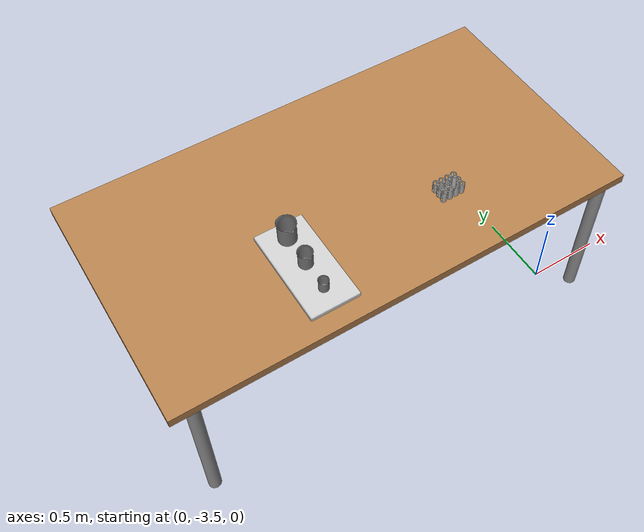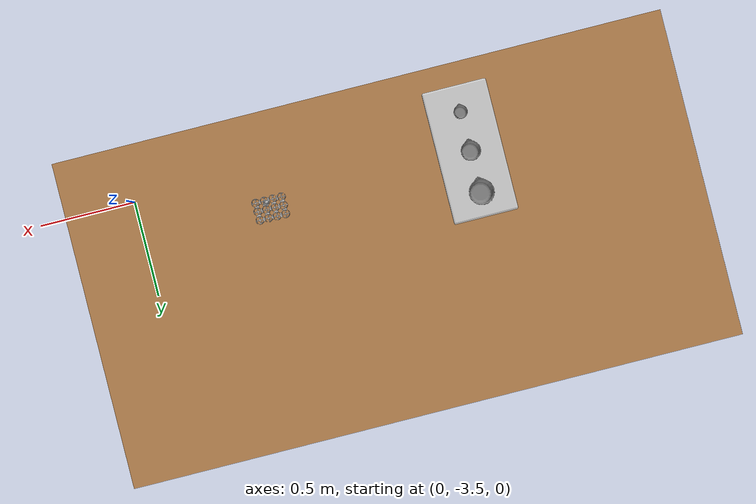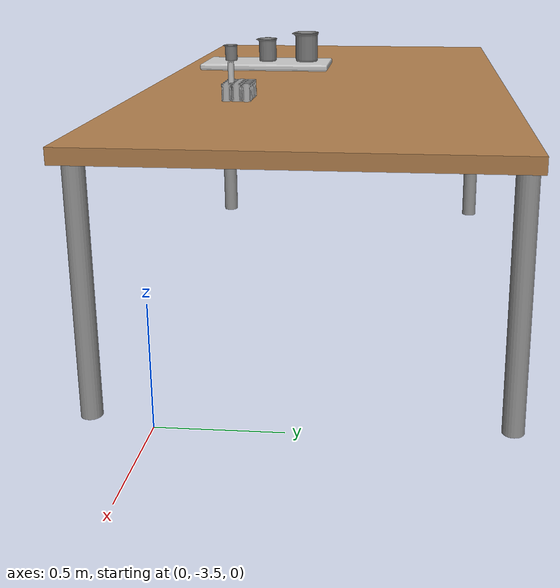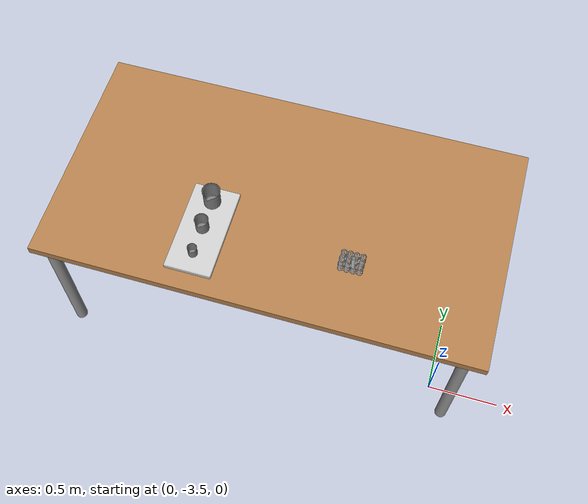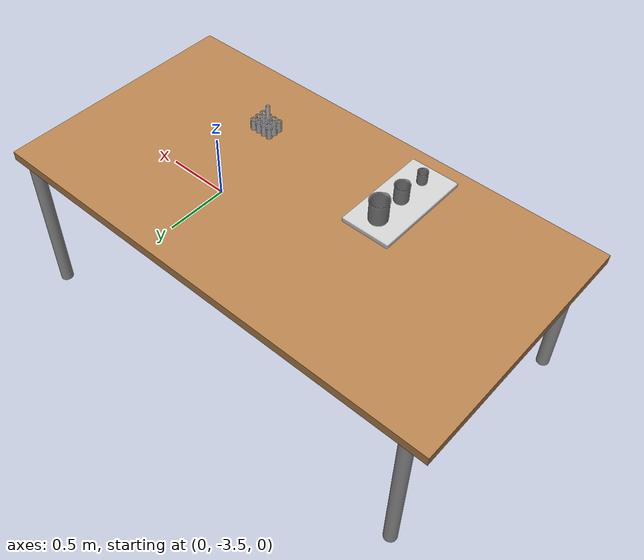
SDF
<sdf version="1.9">
 <world name="empty">
  <physics name="1ms" type="ignored">
   <max_step_size>0.01</max_step_size>
   <real_time_factor>1</real_time_factor>
   <real_time_update_rate>1000</real_time_update_rate>
  </physics>
  <plugin name="gz::sim::systems::Physics" filename="ignition-gazebo-physics-system"/>
  <plugin name="gz::sim::systems::UserCommands" filename="ignition-gazebo-user-commands-system"/>
  <plugin name="gz::sim::systems::SceneBroadcaster" filename="ignition-gazebo-scene-broadcaster-system"/>
  <plugin name="gz::sim::systems::Contact" filename="ignition-gazebo-contact-system"/>
  <gravity>0 0 -9.8</gravity>
  <magnetic_field>6e-06 2.3e-05 -4.2e-05</magnetic_field>
  <atmosphere type="adiabatic"/>
  <scene><ambient>0.4 0.4 0.4 1</ambient><background>0.7 0.7 0.7 1</background><shadows>true</shadows></scene>
  <model name="camera_model">
   <static>true</static>
   <pose>-1.7 -3.30 1.14 0 0 0</pose>
   <link name="camera_link">
    <sensor name="camera_sensor" type="camera">
     <camera>
      <horizontal_fov>1.047</horizontal_fov>
      <image><width>640</width><height>480</height><format>R8G8B8</format></image>
      <clip><near>0.1</near><far>100</far></clip>
     </camera>
     <update_rate>30</update_rate>
    </sensor>
   </link>
  </model>
  <model name="Table">
   <static>true</static>
   <link name="link">
    <collision name="surface">
     <pose>0 0 1.0 0 0 0</pose>
     <geometry><box><size>5.0 3.6 0.06</size></box></geometry>
     <surface><friction><ode><mu>0.59999999999999998</mu><mu2>0.59999999999999998</mu2></ode></friction></surface>
    </collision>
    <visual name="visual1">
     <pose>0 0 1.0 0 0 0</pose>
     <geometry><box><size>3.0 1.6 0.06</size></box></geometry>
     <material>
      <diffuse>1 1 1 1</diffuse>
      <script><uri>file://media/materials/scripts/gazebo.material</uri><name>Gazebo/Wood</name></script>
      <pbr><metal><albedo_map>model://Table/Table_Diffuse.jpg</albedo_map></metal></pbr>
     </material>
    </visual>
    <collision name="front_left_leg">
     <pose>1.36 0.76 0.5 0 0 0</pose>
     <geometry><cylinder><radius>0.04</radius><length>1</length></cylinder></geometry>
    </collision>
    <visual name="front_left_leg">
     <pose>1.36 0.76 0.5 0 0 0</pose>
     <geometry><cylinder><radius>0.04</radius><length>1</length></cylinder></geometry>
     <material>
      <diffuse>0.5 0.5 0.5 1</diffuse>
      <script><uri>file://media/materials/scripts/gazebo.material</uri><name>Gazebo/Grey</name></script>
     </material>
    </visual>
    <collision name="front_right_leg">
     <pose>1.36 -0.76 0.5 0 0 0</pose>
     <geometry><cylinder><radius>0.04</radius><length>1</length></cylinder></geometry>
    </collision>
    <visual name="front_right_leg">
     <pose>1.36 -0.76 0.5 0 0 0</pose>
     <geometry><cylinder><radius>0.04</radius><length>1</length></cylinder></geometry>
     <material>
      <diffuse>0.5 0.5 0.5 1</diffuse>
      <script><uri>file://media/materials/scripts/gazebo.material</uri><name>Gazebo/Grey</name></script>
     </material>
    </visual>
    <collision name="back_right_leg">
     <pose>-1.36 -0.76 0.5 0 0 0</pose>
     <geometry><cylinder><radius>0.04</radius><length>1</length></cylinder></geometry>
    </collision>
    <visual name="back_right_leg">
     <pose>-1.36 -0.76 0.5 0 0 0</pose>
     <geometry><cylinder><radius>0.04</radius><length>1</length></cylinder></geometry>
     <material>
      <diffuse>0.5 0.5 0.5 1</diffuse>
      <script><uri>file://media/materials/scripts/gazebo.material</uri><name>Gazebo/Grey</name></script>
     </material>
    </visual>
    <collision name="back_left_leg">
     <pose>-1.36 0.76 0.5 0 0 0</pose>
     <geometry><cylinder><radius>0.04</radius><length>1</length></cylinder></geometry>
    </collision>
    <visual name="back_left_leg">
     <pose>-1.36 0.76 0.5 0 0 0</pose>
     <geometry><cylinder><radius>0.04</radius><length>1</length></cylinder></geometry>
     <material>
      <diffuse>0.5 0.5 0.5 1</diffuse>
      <script><uri>file://media/materials/scripts/gazebo.material</uri><name>Gazebo/Grey</name></script>
     </material>
    </visual>
    <inertial>
     <mass>1</mass>
     <inertia><ixx>1</ixx><ixy>0</ixy><ixz>0</ixz><iyy>1</iyy><iyz>0</iyz><izz>1</izz></inertia>
    </inertial>
   </link>
   <pose>-1.24873 -2.93352 0.105974 0 -0 0</pose>
  </model>
  <model name="test_tube_stand">
   <static>true</static>
   <link name="link">
    <collision name="collision">
     <geometry>
      <mesh>
       <scale>1 1 1</scale>
       <uri>file:///workspaces/robo_arm_ws/install/a3c_gazebo/share/a3c_gazebo/models/test_tube_stand/model://test_tube_stand/meshes/test_tube_stand.dae</uri>
      </mesh>
     </geometry>
    </collision>
    <visual name="visual">
     <geometry>
      <mesh>
       <scale>1 1 1</scale>
       <uri>file:///workspaces/robo_arm_ws/install/a3c_gazebo/share/a3c_gazebo/models/test_tube_stand/model://test_tube_stand/meshes/test_tube_stand.dae</uri>
      </mesh>
     </geometry>
    </visual>
    <pose>-0.7 -3.30 1.14 0 0 0</pose>
    <inertial>
     <mass>1</mass>
     <inertia><ixx>1</ixx><ixy>0</ixy><ixz>0</ixz><iyy>1</iyy><iyz>0</iyz><izz>1</izz></inertia>
    </inertial>
   </link>
  </model>
  <model name="test_tube">
   <static>true</static>
   <link name="link">
    <collision name="collision">
     <geometry>
      <mesh>
       <scale>1 1 1</scale>
       <uri>file:///workspaces/robo_arm_ws/install/a3c_gazebo/share/a3c_gazebo/models/test_tube/model://test_tube/meshes/test_tube.dae</uri>
      </mesh>
     </geometry>
    </collision>
    <visual name="visual">
     <geometry>
      <mesh>
       <scale>1 1 1</scale>
       <uri>file:///workspaces/robo_arm_ws/install/a3c_gazebo/share/a3c_gazebo/models/test_tube/model://test_tube/meshes/test_tube.dae</uri>
      </mesh>
     </geometry>
    </visual>
    <pose>-0.7 -3.30 1.14 0 0 0</pose>
    <inertial>
     <mass>1</mass>
     <inertia><ixx>1</ixx><ixy>0</ixy><ixz>0</ixz><iyy>1</iyy><iyz>0</iyz><izz>1</izz></inertia>
    </inertial>
   </link>
  </model>
  <model name="beakers">
   <static>true</static>
   <link name="link">
    <collision name="collision">
     <geometry>
      <mesh>
       <scale>1 1 1</scale>
       <uri>file:///workspaces/robo_arm_ws/install/a3c_gazebo/share/a3c_gazebo/models/beakers/model://beakers/meshes/beakers.dae</uri>
      </mesh>
     </geometry>
    </collision>
    <visual name="visual">
     <geometry>
      <mesh>
       <scale>1 1 1</scale>
       <uri>file:///workspaces/robo_arm_ws/install/a3c_gazebo/share/a3c_gazebo/models/beakers/model://beakers/meshes/beakers.dae</uri>
      </mesh>
     </geometry>
    </visual>
    <pose>-1.7 -3.30 1.14 0 0 0</pose>
    <inertial>
     <mass>1</mass>
     <inertia><ixx>1</ixx><ixy>0</ixy><ixz>0</ixz><iyy>1</iyy><iyz>0</iyz><izz>1</izz></inertia>
    </inertial>
   </link>
  </model>
  <light name="sun" type="directional">
   <pose>0 0 10 0 -0 0</pose>
   <intensity>1</intensity>
   <direction>-0.5 0.1 -0.9</direction>
   <diffuse>0.8 0.8 0.8 1</diffuse>
   <specular>0.2 0.2 0.2 1</specular>
   <attenuation>
    <range>1000</range>
    <linear>0.01</linear>
    <constant>0.90000000000000002</constant>
    <quadratic>0.001</quadratic>
   </attenuation>
   <spot><inner_angle>0</inner_angle><outer_angle>0</outer_angle><falloff>0</falloff></spot>
  </light>
 </world>
</sdf>
